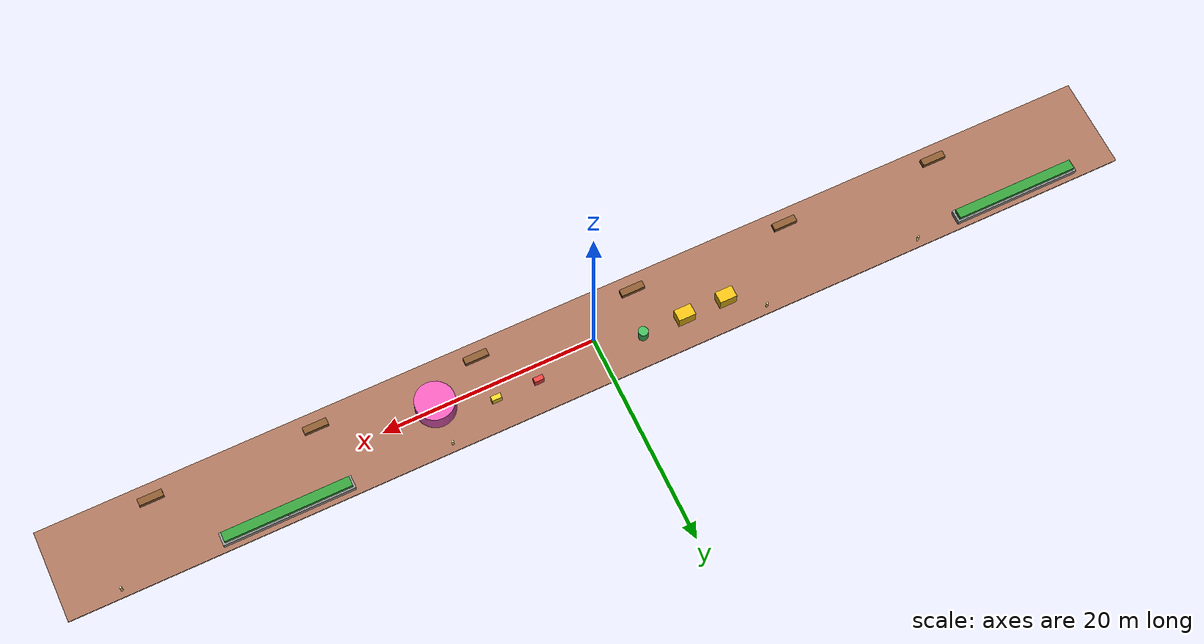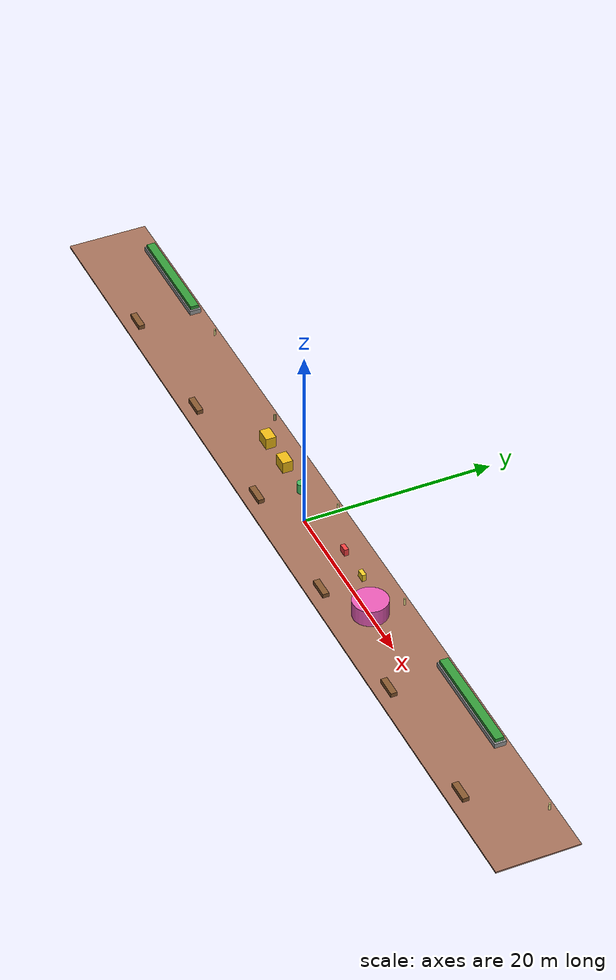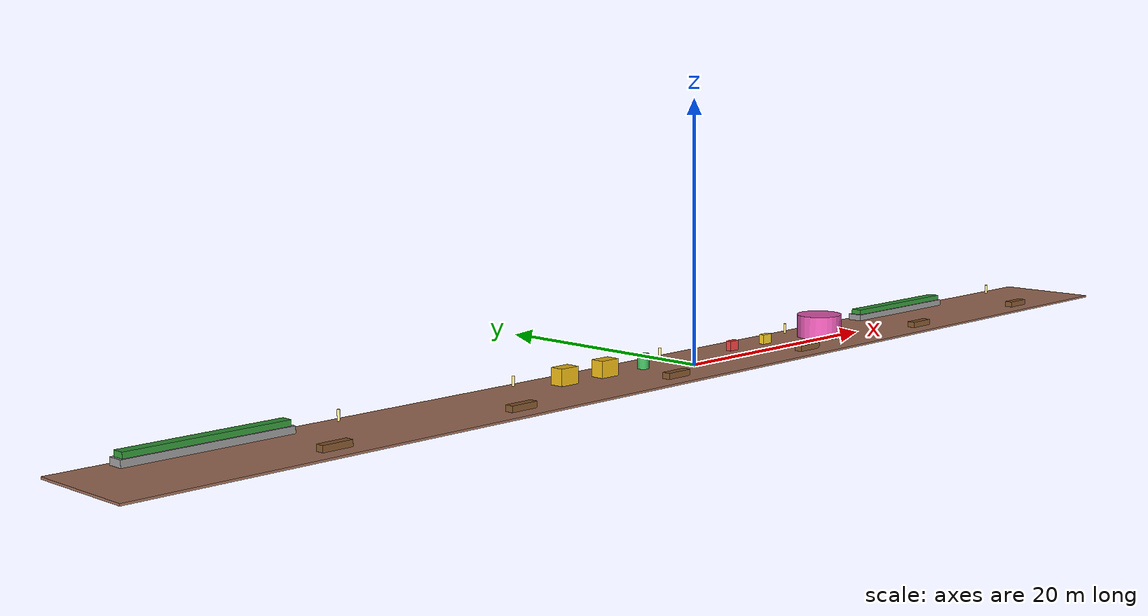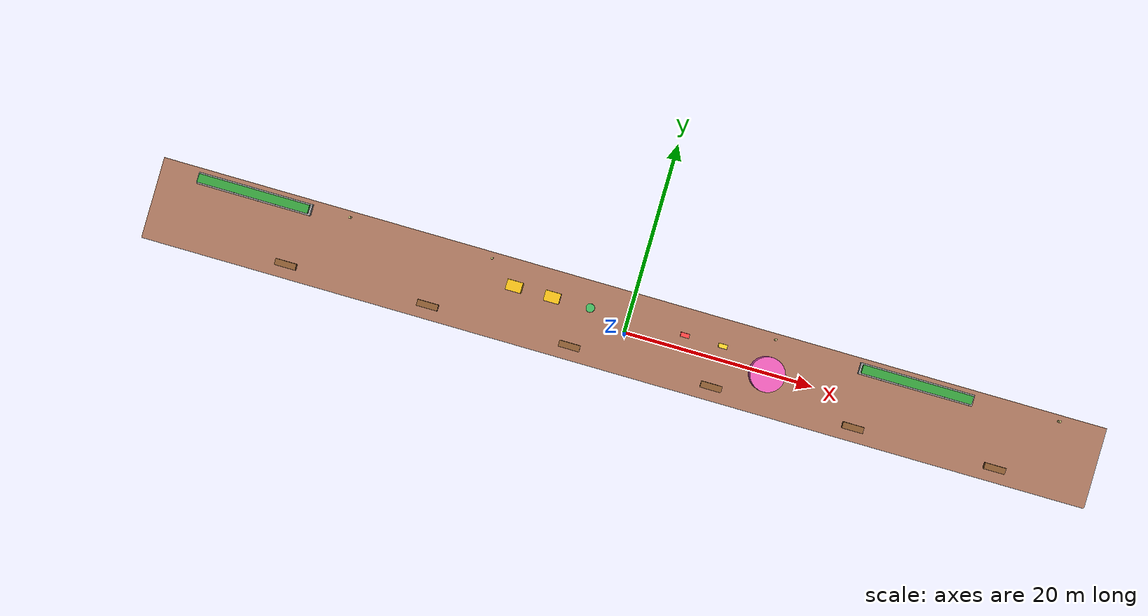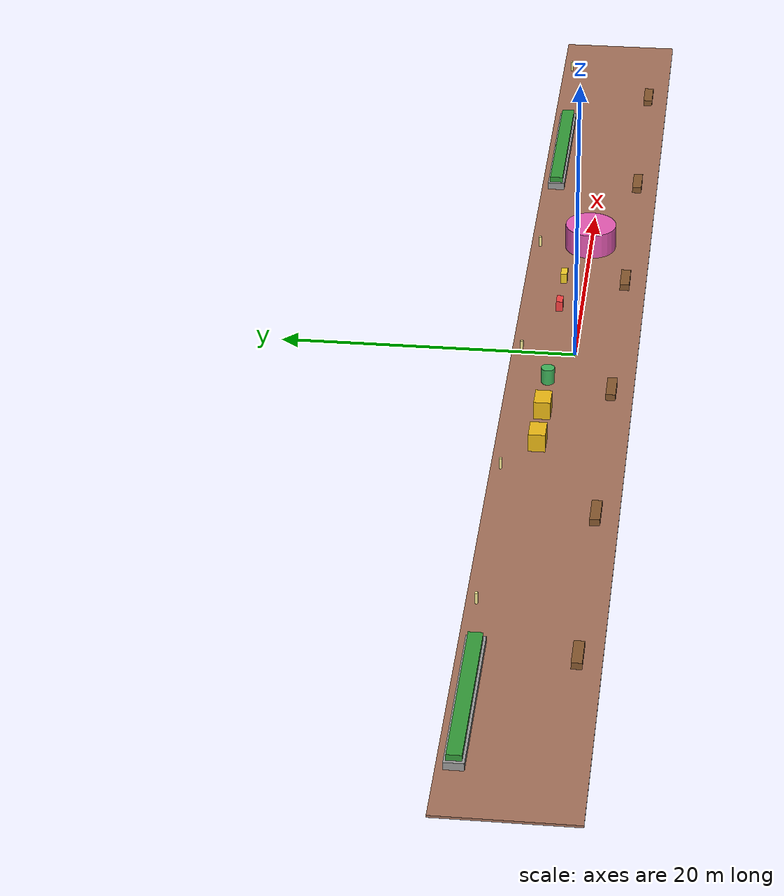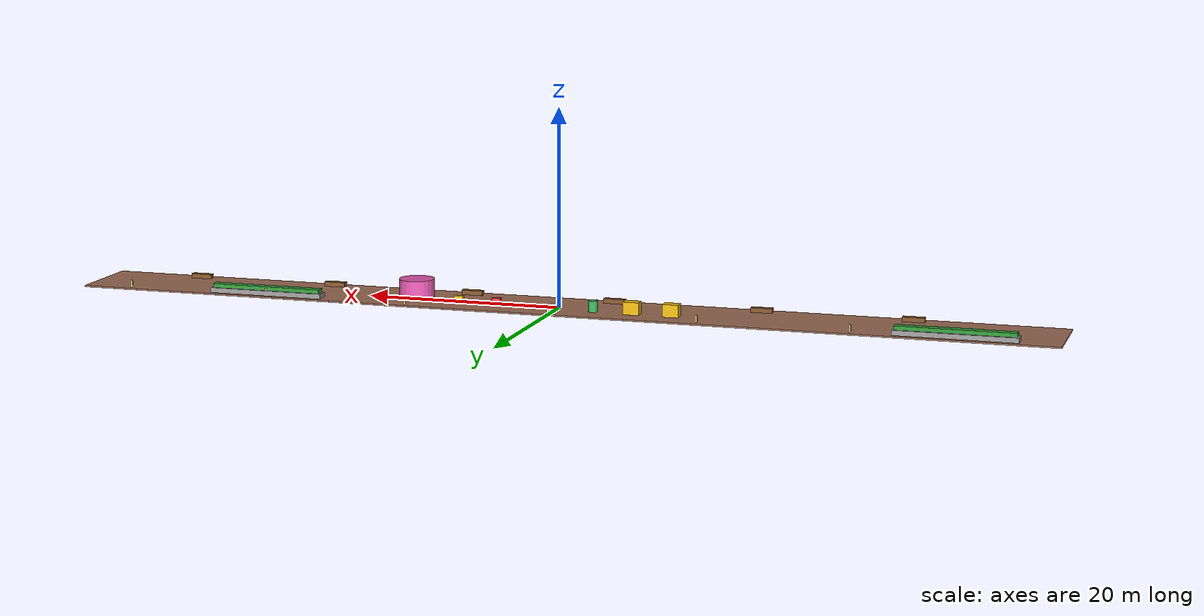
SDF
<?xml version="1.0" ?>
<sdf version="1.8">
  <model name="under_viaduct_linear_park">
    <static>true</static>
    <link name="park_link">

      <!-- 1. 橋下紅磚休閒漫步道地坪 (Interlocking Paver Promenade) -->
      <visual name="promenade_pave">
        <pose>0 0 0.075 0 0 0</pose>
        <geometry><box><size>100.0 8.5 0.15</size></box></geometry>
        <material>
          <ambient>0.56 0.38 0.30 1</ambient>
          <diffuse>0.64 0.44 0.35 1</diffuse>
        </material>
      </visual>

      <!-- 2. 中央休閒健身與兒童彈性安全地墊 (Rubber Safety Turf) -->
      <visual name="rubber_turf">
        <pose>0 0 0.085 0 0 0</pose>
        <geometry><box><size>40.0 6.5 0.02</size></box></geometry>
        <material>
          <ambient>0.20 0.45 0.65 1</ambient>
          <diffuse>0.25 0.55 0.78 1</diffuse>
        </material>
      </visual>

      <!-- 3. 雙人漫步機與健騎機 (Outdoor Fitness Walkers) -->
      <visual name="walker_1"><pose>-12.0 1.5 0.75 0 0 0</pose><geometry><box><size>1.6 1.1 1.3</size></box></geometry><material><ambient>0.85 0.65 0.05 1</ambient><diffuse>0.92 0.72 0.08 1</diffuse></material></visual>
      <visual name="walker_2"><pose>-8.0 1.5 0.75 0 0 0</pose><geometry><box><size>1.6 1.1 1.3</size></box></geometry><material><ambient>0.85 0.65 0.05 1</ambient><diffuse>0.92 0.72 0.08 1</diffuse></material></visual>
      <visual name="twister_1"><pose>-4.0 1.5 0.65 0 0 0</pose><geometry><cylinder><radius>0.45</radius><length>1.2</length></cylinder></geometry><material><ambient>0.2 0.6 0.3 1</ambient><diffuse>0.25 0.7 0.35 1</diffuse></material></visual>

      <!-- 4. 兒童搖搖樂與攀爬架 (Playground Spring Riders & Dome) -->
      <visual name="spring_rider_1"><pose>6.0 1.5 0.55 0 0 0</pose><geometry><box><size>0.9 0.45 0.75</size></box></geometry><material><ambient>0.9 0.2 0.2 1</ambient><diffuse>0.95 0.25 0.25 1</diffuse></material></visual>
      <visual name="spring_rider_2"><pose>10.0 1.5 0.55 0 0 0</pose><geometry><box><size>0.9 0.45 0.75</size></box></geometry><material><ambient>0.9 0.7 0.1 1</ambient><diffuse>0.95 0.8 0.15 1</diffuse></material></visual>
      <visual name="climb_arch"><pose>15.0 0 1.2 0 0 0</pose><geometry><cylinder><radius>1.8</radius><length>1.8</length></cylinder></geometry><material><ambient>0.8 0.3 0.6 1</ambient><diffuse>0.9 0.35 0.7 1</diffuse></material></visual>

      <!-- 5. 實木金屬休閒長椅 (Park Benches x 6) -->
      <visual name="bench_1"><pose>-35.0 -2.8 0.45 0 0 0</pose><geometry><box><size>2.2 0.65 0.45</size></box></geometry><material><ambient>0.45 0.28 0.15 1</ambient><diffuse>0.52 0.34 0.18 1</diffuse></material></visual>
      <visual name="bench_2"><pose>-20.0 -2.8 0.45 0 0 0</pose><geometry><box><size>2.2 0.65 0.45</size></box></geometry><material><ambient>0.45 0.28 0.15 1</ambient><diffuse>0.52 0.34 0.18 1</diffuse></material></visual>
      <visual name="bench_3"><pose>-5.0 -2.8 0.45 0 0 0</pose><geometry><box><size>2.2 0.65 0.45</size></box></geometry><material><ambient>0.45 0.28 0.15 1</ambient><diffuse>0.52 0.34 0.18 1</diffuse></material></visual>
      <visual name="bench_4"><pose>10.0 -2.8 0.45 0 0 0</pose><geometry><box><size>2.2 0.65 0.45</size></box></geometry><material><ambient>0.45 0.28 0.15 1</ambient><diffuse>0.52 0.34 0.18 1</diffuse></material></visual>
      <visual name="bench_5"><pose>25.0 -2.8 0.45 0 0 0</pose><geometry><box><size>2.2 0.65 0.45</size></box></geometry><material><ambient>0.45 0.28 0.15 1</ambient><diffuse>0.52 0.34 0.18 1</diffuse></material></visual>
      <visual name="bench_6"><pose>40.0 -2.8 0.45 0 0 0</pose><geometry><box><size>2.2 0.65 0.45</size></box></geometry><material><ambient>0.45 0.28 0.15 1</ambient><diffuse>0.52 0.34 0.18 1</diffuse></material></visual>

      <!-- 6. 灌木植栽花槽 (Green Planter Boxes) -->
      <visual name="planter_1"><pose>-40.0 3.2 0.4 0 0 0</pose><geometry><box><size>12.0 1.2 0.5</size></box></geometry><material><ambient>0.5 0.5 0.5 1</ambient><diffuse>0.6 0.6 0.6 1</diffuse></material></visual>
      <visual name="shrub_1"><pose>-40.0 3.2 0.8 0 0 0</pose><geometry><box><size>11.6 0.9 0.5</size></box></geometry><material><ambient>0.15 0.5 0.18 1</ambient><diffuse>0.2 0.6 0.22 1</diffuse></material></visual>
      <visual name="planter_2"><pose>30.0 3.2 0.4 0 0 0</pose><geometry><box><size>12.0 1.2 0.5</size></box></geometry><material><ambient>0.5 0.5 0.5 1</ambient><diffuse>0.6 0.6 0.6 1</diffuse></material></visual>
      <visual name="shrub_2"><pose>30.0 3.2 0.8 0 0 0</pose><geometry><box><size>11.6 0.9 0.5</size></box></geometry><material><ambient>0.15 0.5 0.18 1</ambient><diffuse>0.2 0.6 0.22 1</diffuse></material></visual>

      <!-- 7. 橋下景觀暖光矮柱燈 (Park Bollards x 6) -->
      <visual name="bollard_1"><pose>-30.0 3.6 0.45 0 0 0</pose><geometry><cylinder><radius>0.1</radius><length>0.9</length></cylinder></geometry><material><ambient>0.9 0.85 0.5 1</ambient><diffuse>1 0.95 0.6 1</diffuse><emissive>0.3 0.25 0.1 1</emissive></material></visual>
      <visual name="bollard_2"><pose>-15.0 3.6 0.45 0 0 0</pose><geometry><cylinder><radius>0.1</radius><length>0.9</length></cylinder></geometry><material><ambient>0.9 0.85 0.5 1</ambient><diffuse>1 0.95 0.6 1</diffuse><emissive>0.3 0.25 0.1 1</emissive></material></visual>
      <visual name="bollard_3"><pose>0.0 3.6 0.45 0 0 0</pose><geometry><cylinder><radius>0.1</radius><length>0.9</length></cylinder></geometry><material><ambient>0.9 0.85 0.5 1</ambient><diffuse>1 0.95 0.6 1</diffuse><emissive>0.3 0.25 0.1 1</emissive></material></visual>
      <visual name="bollard_4"><pose>15.0 3.6 0.45 0 0 0</pose><geometry><cylinder><radius>0.1</radius><length>0.9</length></cylinder></geometry><material><ambient>0.9 0.85 0.5 1</ambient><diffuse>1 0.95 0.6 1</diffuse><emissive>0.3 0.25 0.1 1</emissive></material></visual>
      <visual name="bollard_5"><pose>30.0 3.6 0.45 0 0 0</pose><geometry><cylinder><radius>0.1</radius><length>0.9</length></cylinder></geometry><material><ambient>0.9 0.85 0.5 1</ambient><diffuse>1 0.95 0.6 1</diffuse><emissive>0.3 0.25 0.1 1</emissive></material></visual>
      <visual name="bollard_6"><pose>45.0 3.6 0.45 0 0 0</pose><geometry><cylinder><radius>0.1</radius><length>0.9</length></cylinder></geometry><material><ambient>0.9 0.85 0.5 1</ambient><diffuse>1 0.95 0.6 1</diffuse><emissive>0.3 0.25 0.1 1</emissive></material></visual>
    </link>
  </model>
</sdf>
